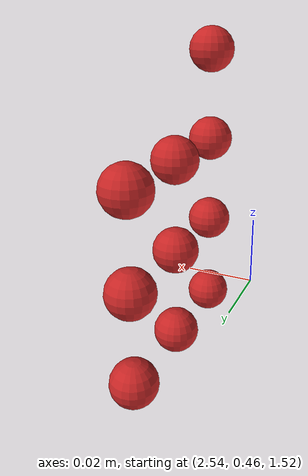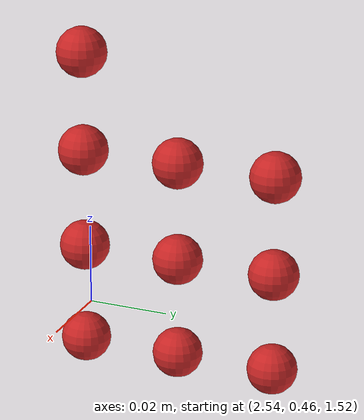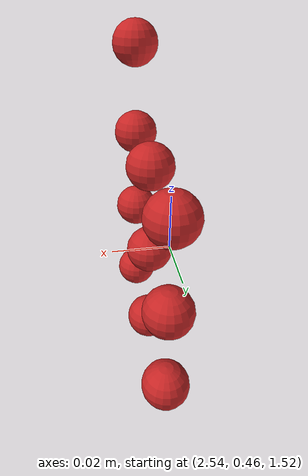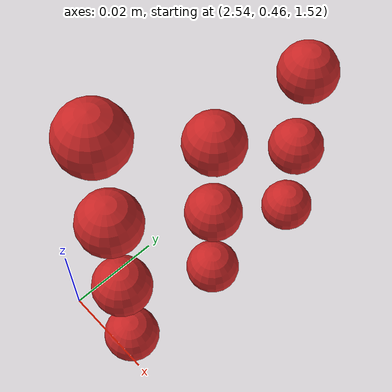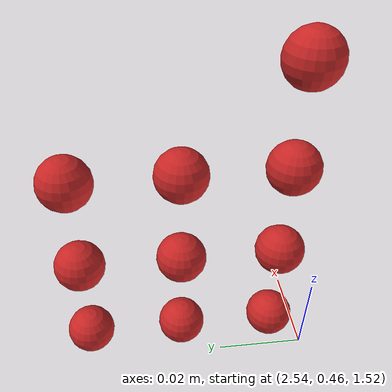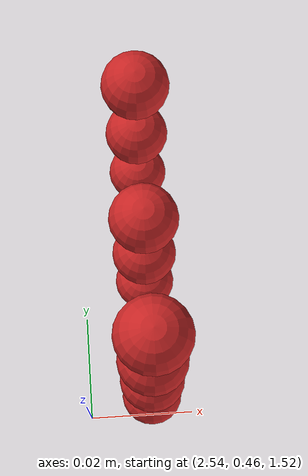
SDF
<sdf version="1.4">
 <world name="default">
  <model name="ground_plane">
   <static>1</static>
   <link name="link">
    <collision name="collision">
     <geometry><plane><normal>0 0 1</normal><size>100 100</size></plane></geometry>
     <surface><friction><ode><mu>100</mu><mu2>50</mu2></ode></friction></surface>
    </collision>
    <visual name="visual">
     <cast_shadows>0</cast_shadows>
     <geometry><plane><normal>0 0 1</normal><size>100 100</size></plane></geometry>
     <material>
      <script><uri>file://media/materials/scripts/gazebo.material</uri><name>Gazebo/Grey</name></script>
     </material>
    </visual>
    <velocity_decay><linear>0</linear><angular>0</angular></velocity_decay>
   </link>
  </model>
  <model name="sphere27">
   <pose>1.276140 0.232149 0.758288 0 0 0</pose>
   <link name="link">
    <pose>1.276140 0.232149 0.758288 0 0 0</pose>
    <inertial>
     <mass>0.001</mass>
     <inertia>
      <ixx>0.004</ixx>
      <ixy>0.000000</ixy>
      <ixz>0.000000</ixz>
      <iyy>0.004</iyy>
      <iyz>0.000000</iyz>
      <izz>0.004</izz>
     </inertia>
    </inertial>
    <collision name="collision">
     <surface>
      <contact><ode><kp>10000000000.000000</kp><kd>1</kd></ode></contact>
      <friction><ode><mu>0.01</mu><mu2>0.01</mu2></ode></friction>
     </surface>
     <geometry><sphere><radius>0.006</radius></sphere></geometry>
    </collision>
    <visual name="visual">
     <geometry><sphere><radius>0.006</radius></sphere></geometry>
     <material>
      <script><uri>file://media/materials/scripts/gazebo.material</uri><name>Gazebo/Red</name></script>
     </material>
    </visual>
   </link>
  </model>
  <model name="sphere30">
   <pose>1.276140 0.244149 0.758288 0 0 0</pose>
   <link name="link">
    <pose>1.276140 0.244149 0.758288 0 0 0</pose>
    <inertial>
     <mass>0.001</mass>
     <inertia>
      <ixx>0.004</ixx>
      <ixy>0.000000</ixy>
      <ixz>0.000000</ixz>
      <iyy>0.004</iyy>
      <iyz>0.000000</iyz>
      <izz>0.004</izz>
     </inertia>
    </inertial>
    <collision name="collision">
     <surface>
      <contact><ode><kp>10000000000.000000</kp><kd>1</kd></ode></contact>
      <friction><ode><mu>0.01</mu><mu2>0.01</mu2></ode></friction>
     </surface>
     <geometry><sphere><radius>0.006</radius></sphere></geometry>
    </collision>
    <visual name="visual">
     <geometry><sphere><radius>0.006</radius></sphere></geometry>
     <material>
      <script><uri>file://media/materials/scripts/gazebo.material</uri><name>Gazebo/Red</name></script>
     </material>
    </visual>
   </link>
  </model>
  <model name="sphere33">
   <pose>1.276140 0.256149 0.758288 0 0 0</pose>
   <link name="link">
    <pose>1.276140 0.256149 0.758288 0 0 0</pose>
    <inertial>
     <mass>0.001</mass>
     <inertia>
      <ixx>0.004</ixx>
      <ixy>0.000000</ixy>
      <ixz>0.000000</ixz>
      <iyy>0.004</iyy>
      <iyz>0.000000</iyz>
      <izz>0.004</izz>
     </inertia>
    </inertial>
    <collision name="collision">
     <surface>
      <contact><ode><kp>10000000000.000000</kp><kd>1</kd></ode></contact>
      <friction><ode><mu>0.01</mu><mu2>0.01</mu2></ode></friction>
     </surface>
     <geometry><sphere><radius>0.006</radius></sphere></geometry>
    </collision>
    <visual name="visual">
     <geometry><sphere><radius>0.006</radius></sphere></geometry>
     <material>
      <script><uri>file://media/materials/scripts/gazebo.material</uri><name>Gazebo/Red</name></script>
     </material>
    </visual>
   </link>
  </model>
  <model name="sphere36">
   <pose>1.276140 0.232149 0.770288 0 0 0</pose>
   <link name="link">
    <pose>1.276140 0.232149 0.770288 0 0 0</pose>
    <inertial>
     <mass>0.001</mass>
     <inertia>
      <ixx>0.004</ixx>
      <ixy>0.000000</ixy>
      <ixz>0.000000</ixz>
      <iyy>0.004</iyy>
      <iyz>0.000000</iyz>
      <izz>0.004</izz>
     </inertia>
    </inertial>
    <collision name="collision">
     <surface>
      <contact><ode><kp>10000000000.000000</kp><kd>1</kd></ode></contact>
      <friction><ode><mu>0.01</mu><mu2>0.01</mu2></ode></friction>
     </surface>
     <geometry><sphere><radius>0.006</radius></sphere></geometry>
    </collision>
    <visual name="visual">
     <geometry><sphere><radius>0.006</radius></sphere></geometry>
     <material>
      <script><uri>file://media/materials/scripts/gazebo.material</uri><name>Gazebo/Red</name></script>
     </material>
    </visual>
   </link>
  </model>
  <model name="sphere39">
   <pose>1.276140 0.244149 0.770288 0 0 0</pose>
   <link name="link">
    <pose>1.276140 0.244149 0.770288 0 0 0</pose>
    <inertial>
     <mass>0.001</mass>
     <inertia>
      <ixx>0.004</ixx>
      <ixy>0.000000</ixy>
      <ixz>0.000000</ixz>
      <iyy>0.004</iyy>
      <iyz>0.000000</iyz>
      <izz>0.004</izz>
     </inertia>
    </inertial>
    <collision name="collision">
     <surface>
      <contact><ode><kp>10000000000.000000</kp><kd>1</kd></ode></contact>
      <friction><ode><mu>0.01</mu><mu2>0.01</mu2></ode></friction>
     </surface>
     <geometry><sphere><radius>0.006</radius></sphere></geometry>
    </collision>
    <visual name="visual">
     <geometry><sphere><radius>0.006</radius></sphere></geometry>
     <material>
      <script><uri>file://media/materials/scripts/gazebo.material</uri><name>Gazebo/Red</name></script>
     </material>
    </visual>
   </link>
  </model>
  <model name="sphere42">
   <pose>1.276140 0.256149 0.770288 0 0 0</pose>
   <link name="link">
    <pose>1.276140 0.256149 0.770288 0 0 0</pose>
    <inertial>
     <mass>0.001</mass>
     <inertia>
      <ixx>0.004</ixx>
      <ixy>0.000000</ixy>
      <ixz>0.000000</ixz>
      <iyy>0.004</iyy>
      <iyz>0.000000</iyz>
      <izz>0.004</izz>
     </inertia>
    </inertial>
    <collision name="collision">
     <surface>
      <contact><ode><kp>10000000000.000000</kp><kd>1</kd></ode></contact>
      <friction><ode><mu>0.01</mu><mu2>0.01</mu2></ode></friction>
     </surface>
     <geometry><sphere><radius>0.006</radius></sphere></geometry>
    </collision>
    <visual name="visual">
     <geometry><sphere><radius>0.006</radius></sphere></geometry>
     <material>
      <script><uri>file://media/materials/scripts/gazebo.material</uri><name>Gazebo/Red</name></script>
     </material>
    </visual>
   </link>
  </model>
  <model name="sphere45">
   <pose>1.276140 0.232149 0.782288 0 0 0</pose>
   <link name="link">
    <pose>1.276140 0.232149 0.782288 0 0 0</pose>
    <inertial>
     <mass>0.001</mass>
     <inertia>
      <ixx>0.004</ixx>
      <ixy>0.000000</ixy>
      <ixz>0.000000</ixz>
      <iyy>0.004</iyy>
      <iyz>0.000000</iyz>
      <izz>0.004</izz>
     </inertia>
    </inertial>
    <collision name="collision">
     <surface>
      <contact><ode><kp>10000000000.000000</kp><kd>1</kd></ode></contact>
      <friction><ode><mu>0.01</mu><mu2>0.01</mu2></ode></friction>
     </surface>
     <geometry><sphere><radius>0.006</radius></sphere></geometry>
    </collision>
    <visual name="visual">
     <geometry><sphere><radius>0.006</radius></sphere></geometry>
     <material>
      <script><uri>file://media/materials/scripts/gazebo.material</uri><name>Gazebo/Red</name></script>
     </material>
    </visual>
   </link>
  </model>
  <model name="sphere48">
   <pose>1.276140 0.244149 0.782288 0 0 0</pose>
   <link name="link">
    <pose>1.276140 0.244149 0.782288 0 0 0</pose>
    <inertial>
     <mass>0.001</mass>
     <inertia>
      <ixx>0.004</ixx>
      <ixy>0.000000</ixy>
      <ixz>0.000000</ixz>
      <iyy>0.004</iyy>
      <iyz>0.000000</iyz>
      <izz>0.004</izz>
     </inertia>
    </inertial>
    <collision name="collision">
     <surface>
      <contact><ode><kp>10000000000.000000</kp><kd>1</kd></ode></contact>
      <friction><ode><mu>0.01</mu><mu2>0.01</mu2></ode></friction>
     </surface>
     <geometry><sphere><radius>0.006</radius></sphere></geometry>
    </collision>
    <visual name="visual">
     <geometry><sphere><radius>0.006</radius></sphere></geometry>
     <material>
      <script><uri>file://media/materials/scripts/gazebo.material</uri><name>Gazebo/Red</name></script>
     </material>
    </visual>
   </link>
  </model>
  <model name="sphere51">
   <pose>1.276140 0.256149 0.782288 0 0 0</pose>
   <link name="link">
    <pose>1.276140 0.256149 0.782288 0 0 0</pose>
    <inertial>
     <mass>0.001</mass>
     <inertia>
      <ixx>0.004</ixx>
      <ixy>0.000000</ixy>
      <ixz>0.000000</ixz>
      <iyy>0.004</iyy>
      <iyz>0.000000</iyz>
      <izz>0.004</izz>
     </inertia>
    </inertial>
    <collision name="collision">
     <surface>
      <contact><ode><kp>10000000000.000000</kp><kd>1</kd></ode></contact>
      <friction><ode><mu>0.01</mu><mu2>0.01</mu2></ode></friction>
     </surface>
     <geometry><sphere><radius>0.006</radius></sphere></geometry>
    </collision>
    <visual name="visual">
     <geometry><sphere><radius>0.006</radius></sphere></geometry>
     <material>
      <script><uri>file://media/materials/scripts/gazebo.material</uri><name>Gazebo/Red</name></script>
     </material>
    </visual>
   </link>
  </model>
  <model name="sphere54">
   <pose>1.276140 0.232149 0.794288 0 0 0</pose>
   <link name="link">
    <pose>1.276140 0.232149 0.794288 0 0 0</pose>
    <inertial>
     <mass>0.001</mass>
     <inertia>
      <ixx>0.004</ixx>
      <ixy>0.000000</ixy>
      <ixz>0.000000</ixz>
      <iyy>0.004</iyy>
      <iyz>0.000000</iyz>
      <izz>0.004</izz>
     </inertia>
    </inertial>
    <collision name="collision">
     <surface>
      <contact><ode><kp>10000000000.000000</kp><kd>1</kd></ode></contact>
      <friction><ode><mu>0.01</mu><mu2>0.01</mu2></ode></friction>
     </surface>
     <geometry><sphere><radius>0.006</radius></sphere></geometry>
    </collision>
    <visual name="visual">
     <geometry><sphere><radius>0.006</radius></sphere></geometry>
     <material>
      <script><uri>file://media/materials/scripts/gazebo.material</uri><name>Gazebo/Red</name></script>
     </material>
    </visual>
   </link>
  </model>
 </world>
</sdf>
